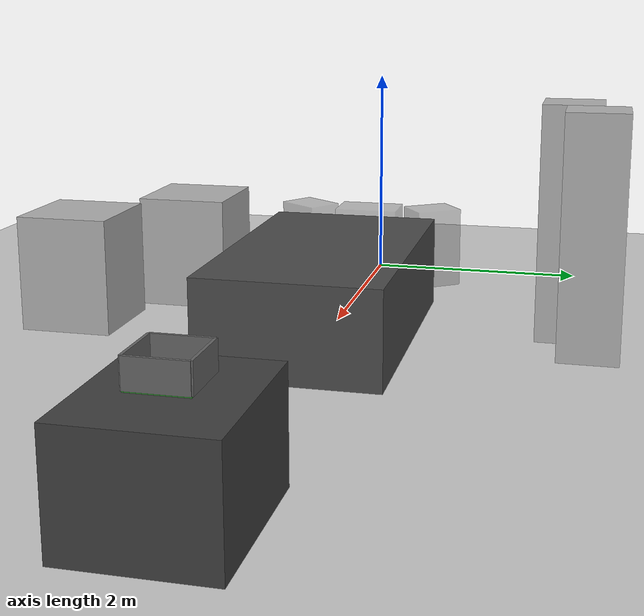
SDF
<?xml version="1.0" ?>
<sdf version="1.8">
  <world name="laboratoire">

    <plugin filename="gz-sim-physics-system" name="gz::sim::systems::Physics" />
    <plugin filename="gz-sim-user-commands-system" name="gz::sim::systems::UserCommands" />
    <plugin filename="gz-sim-scene-broadcaster-system" name="gz::sim::systems::SceneBroadcaster" />
    <plugin filename="libgz-sim-sensors-system.so" name="gz::sim::systems::Sensors">
      <render_engine>ogre2</render_engine>
    </plugin>
    <plugin filename="libgz-sim-imu-system.so" name="gz::sim::systems::Imu" />
    <plugin filename="libgz-sim-navsat-system.so" name="gz::sim::systems::NavSat" />

    <!-- Simulation unthrottling: allow physics engine up to 500% (5.0) real-time factor -->
    <physics name="fast_physics" type="ignored">
      <max_step_size>0.001</max_step_size>
      <real_time_factor>5.0</real_time_factor>
    </physics>

    <light type="directional" name="sun">
      <cast_shadows>true</cast_shadows>
      <pose>0 0 10 0 0 0</pose>
      <diffuse>0.8 0.8 0.8 1</diffuse>
      <specular>0.2 0.2 0.2 1</specular>
    </light>

    <model name="ground_plane">
      <static>true</static>
      <link name="link">
        <collision name="collision">
          <geometry>
            <plane>
              <normal>0 0 1</normal>
              <size>100 100</size>
            </plane>
          </geometry>
        </collision>
        <visual name="visual">
          <geometry>
            <plane>
              <normal>0 0 1</normal>
              <size>100 100</size>
            </plane>
          </geometry>
          <material>
            <ambient>0.8 0.8 0.8 1</ambient>
            <diffuse>0.8 0.8 0.8 1</diffuse>
          </material>
        </visual>
      </link>
    </model>

    <!-- Training table (semi-ring without collision with robot chassis) -->
    <model name="training_table">
      <static>true</static>

      <!-- Center block (in front of robot) -->
      <link name="front_link">
        <pose>0.62 0.0 0.38 0 0 0</pose>
        <collision name="collision">
          <geometry><box><size>0.40 0.60 0.76</size></box></geometry>
        </collision>
        <visual name="visual">
          <geometry><box><size>0.40 0.60 0.76</size></box></geometry>
          <material>
            <ambient>0.5 0.5 0.5 0.5</ambient>
            <diffuse>0.5 0.5 0.5 0.5</diffuse>
          </material>
        </visual>
      </link>

      <!-- Left diagonal block -->
      <link name="left_link">
        <pose>0.55 0.62 0.38 0 0 0.61</pose>
        <collision name="collision">
          <geometry><box><size>0.35 0.45 0.76</size></box></geometry>
        </collision>
        <visual name="visual">
          <geometry><box><size>0.35 0.45 0.76</size></box></geometry>
          <material>
            <ambient>0.5 0.5 0.5 0.5</ambient>
            <diffuse>0.5 0.5 0.5 0.5</diffuse>
          </material>
        </visual>
      </link>

      <!-- Right diagonal block -->
      <link name="right_link">
        <pose>0.55 -0.62 0.38 0 0 -0.61</pose>
        <collision name="collision">
          <geometry><box><size>0.35 0.45 0.76</size></box></geometry>
        </collision>
        <visual name="visual">
          <geometry><box><size>0.35 0.45 0.76</size></box></geometry>
          <material>
            <ambient>0.5 0.5 0.5 0.5</ambient>
            <diffuse>0.5 0.5 0.5 0.5</diffuse>
          </material>
        </visual>
      </link>
    </model>

   <model name="operations_table">
      <static>true</static>
      <pose>2.5 0.0 0.4 0 0 0</pose>
      <link name="link">
        <collision name="collision">
          <geometry>
            <box>
              <size>2.5 1.5 0.8</size> </box>
          </geometry>
        </collision>
        <visual name="visual">
          <geometry>
            <box>
              <size>2.5 1.5 0.8</size>
            </box>
          </geometry>
          <material>
            <ambient>0.2 0.2 0.2 1</ambient> <diffuse>0.3 0.3 0.3 1</diffuse>
          </material>
        </visual>
      </link>
    </model>

    <model name="obstacle_left">
      <static>true</static>
      <pose>2.5 2.2 1.0 0 0 0</pose>
      <link name="link">
        <collision name="collision">
          <geometry>
            <box>
              <size>0.5 0.5 2.0</size>
            </box>
          </geometry>
        </collision>
        <visual name="visual">
          <geometry>
            <box>
              <size>0.5 0.5 2.0</size>
            </box>
          </geometry>
          <material>
            <ambient>0.7 0.7 0.7 1</ambient>
            <diffuse>0.7 0.7 0.7 1</diffuse>
          </material>
        </visual>
      </link>
    </model>

    <model name="obstacle_right">
      <static>true</static>
      <pose>2.5 -2.2 0.5 0 0 0</pose>
      <link name="link">
        <collision name="collision">
          <geometry>
            <box>
              <size>0.8 0.8 1.0</size>
            </box>
          </geometry>
        </collision>
        <visual name="visual">
          <geometry>
            <box>
              <size>0.8 0.8 1.0</size>
            </box>
          </geometry>
          <material>
            <ambient>0.7 0.7 0.7 1</ambient>
            <diffuse>0.7 0.7 0.7 1</diffuse>
          </material>
        </visual>
      </link>
    </model>

    <model name="obstacle_left_2">
      <static>true</static>
      <pose>2.0 2.0 1.0 0 0 0</pose>
      <link name="link">
        <collision name="collision">
          <geometry>
            <box>
              <size>0.5 0.5 2.0</size>
            </box>
          </geometry>
        </collision>
        <visual name="visual">
          <geometry>
            <box>
              <size>0.5 0.5 2.0</size>
            </box>
          </geometry>
          <material>
            <ambient>0.7 0.7 0.7 1</ambient>
            <diffuse>0.7 0.7 0.7 1</diffuse>
          </material>
        </visual>
      </link>
    </model>

    <model name="obstacle_right_2">
      <static>true</static>
      <pose>1.5 -1.5 0.5 0 0 0</pose>
      <link name="link">
        <collision name="collision">
          <geometry>
            <box>
              <size>0.8 0.8 1.0</size>
            </box>
          </geometry>
        </collision>
        <visual name="visual">
          <geometry>
            <box>
              <size>0.8 0.8 1.0</size>
            </box>
          </geometry>
          <material>
            <ambient>0.7 0.7 0.7 1</ambient>
            <diffuse>0.7 0.7 0.7 1</diffuse>
          </material>
        </visual>
      </link>
    </model>

    <!-- Drop table (3.5m from source table) -->
    <model name="drop_table">
      <static>true</static>
      <pose>6.0 0.0 0.4 0 0 0</pose>
      <link name="link">
        <collision name="collision">
          <geometry>
            <box>
              <size>1.2 1.0 0.8</size>
            </box>
          </geometry>
        </collision>
        <visual name="visual">
          <geometry>
            <box>
              <size>1.2 1.0 0.8</size>
            </box>
          </geometry>
          <material>
            <ambient>0.15 0.15 0.15 1</ambient>
            <diffuse>0.25 0.25 0.25 1</diffuse>
          </material>
        </visual>
      </link>
    </model>

    <!-- Drop crate (RL target zone) -->
    <model name="drop_zone">
      <static>true</static>
      <pose>6.0 0.0 0.85 0 0 0</pose>
      <link name="link">
        <!-- Crate floor -->
        <collision name="floor_collision">
          <geometry>
            <box>
              <size>0.4 0.4 0.02</size>
            </box>
          </geometry>
        </collision>
        <visual name="floor_visual">
          <geometry>
            <box>
              <size>0.4 0.4 0.02</size>
            </box>
          </geometry>
          <material>
            <ambient>0.1 0.4 0.1 1</ambient>
            <diffuse>0.2 0.6 0.2 1</diffuse>
          </material>
        </visual>
        <!-- Crate walls (4 sides) -->
        <collision name="wall_front">
          <pose>0.2 0 0.1 0 0 0</pose>
          <geometry><box><size>0.02 0.4 0.2</size></box></geometry>
        </collision>
        <visual name="wall_front_vis">
          <pose>0.2 0 0.1 0 0 0</pose>
          <geometry><box><size>0.02 0.4 0.2</size></box></geometry>
          <material><ambient>0.3 0.3 0.3 1</ambient><diffuse>0.4 0.4 0.4 1</diffuse></material>
        </visual>
        <collision name="wall_back">
          <pose>-0.2 0 0.1 0 0 0</pose>
          <geometry><box><size>0.02 0.4 0.2</size></box></geometry>
        </collision>
        <visual name="wall_back_vis">
          <pose>-0.2 0 0.1 0 0 0</pose>
          <geometry><box><size>0.02 0.4 0.2</size></box></geometry>
          <material><ambient>0.3 0.3 0.3 1</ambient><diffuse>0.4 0.4 0.4 1</diffuse></material>
        </visual>
        <collision name="wall_left">
          <pose>0 0.2 0.1 0 0 0</pose>
          <geometry><box><size>0.4 0.02 0.2</size></box></geometry>
        </collision>
        <visual name="wall_left_vis">
          <pose>0 0.2 0.1 0 0 0</pose>
          <geometry><box><size>0.4 0.02 0.2</size></box></geometry>
          <material><ambient>0.3 0.3 0.3 1</ambient><diffuse>0.4 0.4 0.4 1</diffuse></material>
        </visual>
        <collision name="wall_right">
          <pose>0 -0.2 0.1 0 0 0</pose>
          <geometry><box><size>0.4 0.02 0.2</size></box></geometry>
        </collision>
        <visual name="wall_right_vis">
          <pose>0 -0.2 0.1 0 0 0</pose>
          <geometry><box><size>0.4 0.02 0.2</size></box></geometry>
          <material><ambient>0.3 0.3 0.3 1</ambient><diffuse>0.4 0.4 0.4 1</diffuse></material>
        </visual>
      </link>
    </model>

    <!-- Contact system plugin (required for tactile sensors) -->
    <plugin filename="gz-sim-contact-system" name="gz::sim::systems::Contact" />

  </world>
</sdf>
